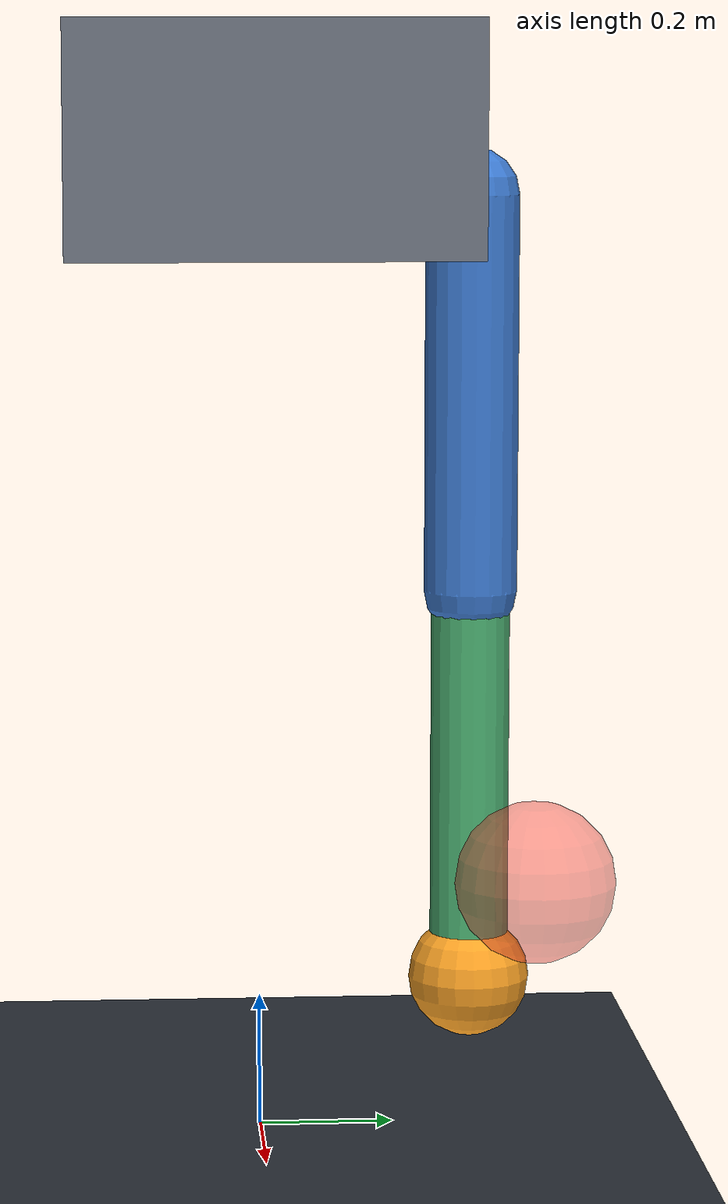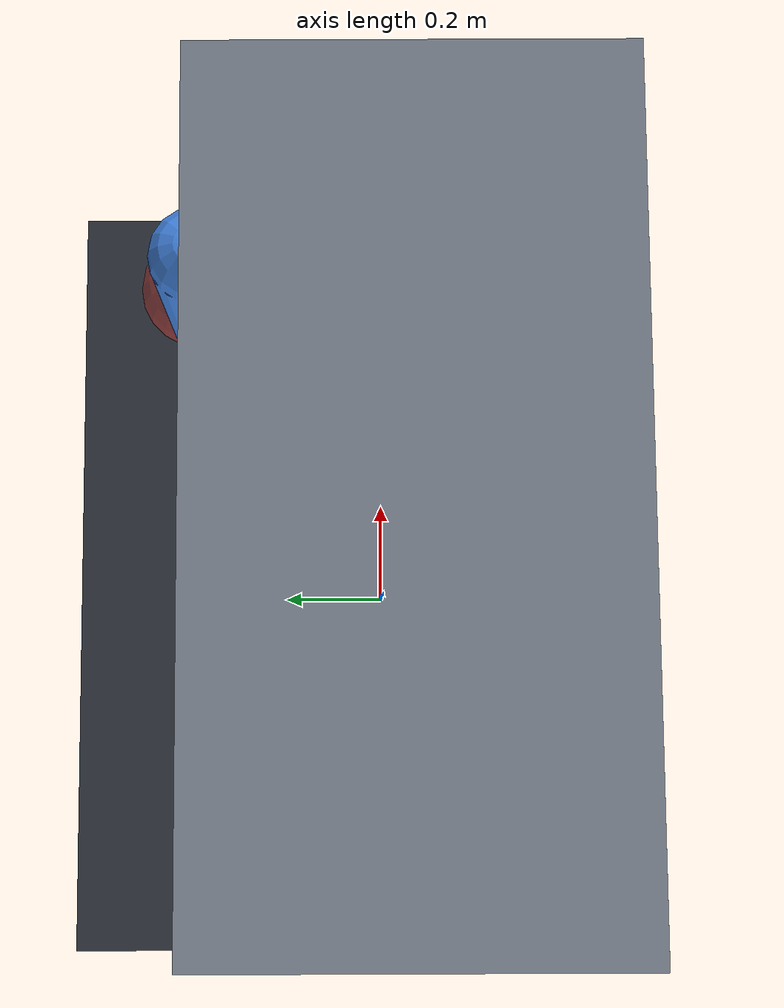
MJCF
<mujoco model="IK quadruped leg">
  <option gravity="0 0 0"/>
  <visual><headlight ambient=".25 .25 .25" diffuse=".75 .75 .75"/></visual>
  <worldbody>
    <geom type="plane" size="3 3 .1" rgba=".16 .18 .21 1"/>
    <site name="goal" pos=".55 .35 .5" size=".11" rgba="1 .25 .2 .45"/>
    <body name="trunk" pos="0 0 1.5">
      <geom type="box" size=".55 .28 .16" rgba=".45 .48 .53 1"/>
      <body name="hip" pos=".35 .28 -.08">
        <joint name="hip abduction" type="hinge" axis="1 0 0" range="-50 50"/>
        <joint name="hip flexion" type="hinge" axis="0 1 0" range="-140 80"/>
        <geom type="capsule" fromto="0 0 0 0 0 -.55" size=".065" rgba=".25 .5 .85 1"/>
        <body name="knee" pos="0 0 -.55">
          <joint name="knee" type="hinge" axis="0 1 0" range="-155 0"/>
          <geom type="capsule" fromto="0 0 0 0 0 -.55" size=".055" rgba=".3 .7 .45 1"/>
          <site name="foot" pos="0 0 -.55" size=".085" rgba="1 .65 .15 1"/>
        </body>
      </body>
    </body>
  </worldbody>
</mujoco>
